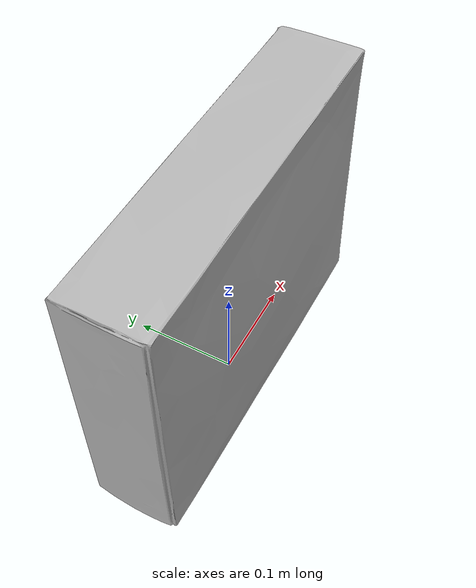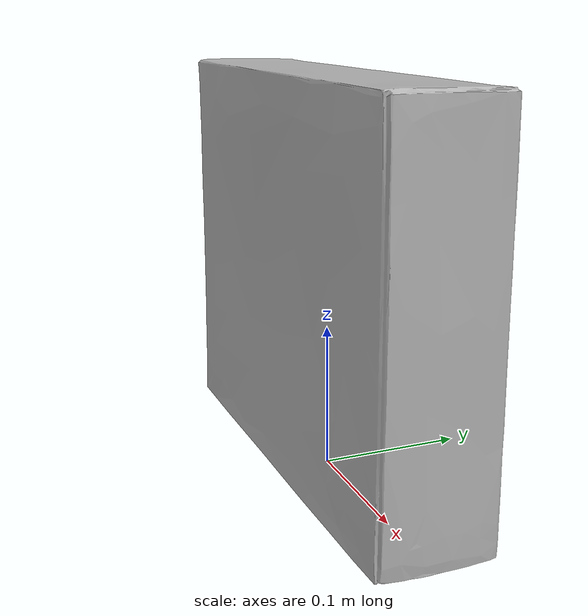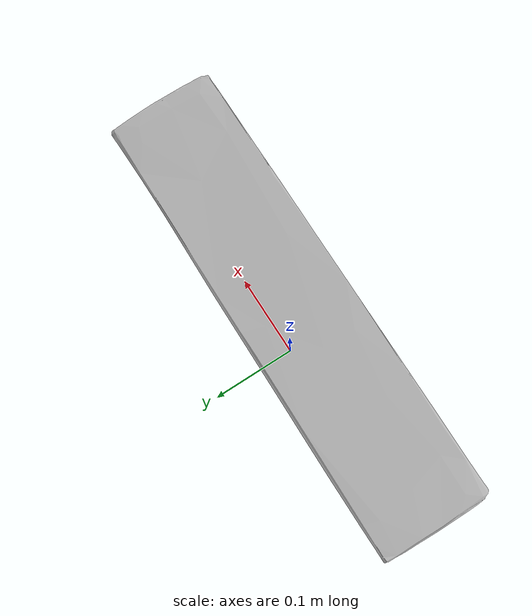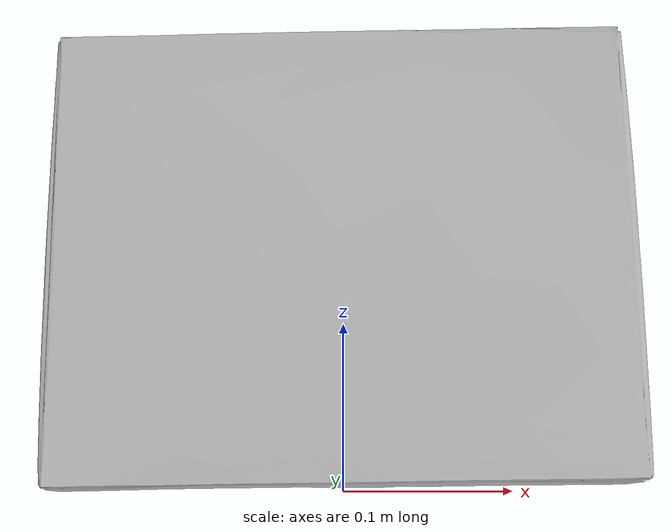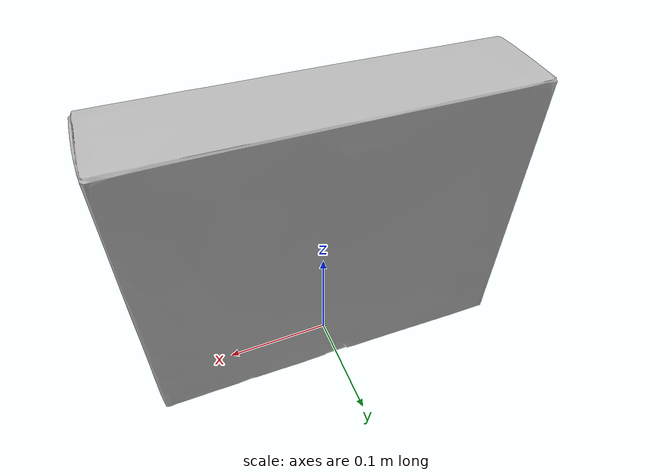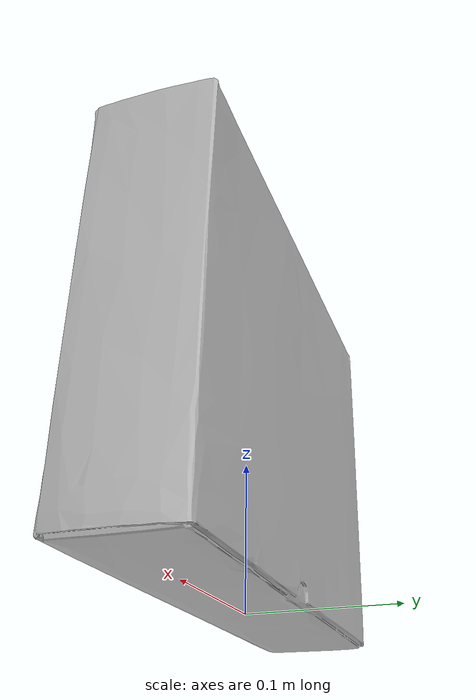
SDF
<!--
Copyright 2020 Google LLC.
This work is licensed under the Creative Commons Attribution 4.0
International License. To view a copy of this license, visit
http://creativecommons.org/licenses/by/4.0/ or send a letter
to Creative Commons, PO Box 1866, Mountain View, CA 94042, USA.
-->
<?xml version="1.0" ?>
<sdf version="1.6">
  <model name="Asus_Sabertooth_990FX_20_Motherboard_ATX_Socket_AM3">
    <link name="link_0">
      <visual name="visual">
        <geometry>
          <mesh>
            <uri>meshes/model.obj</uri>
          </mesh>
        </geometry>
      </visual>
      <collision name="collision_0">
        <geometry>
          <mesh>
            <uri>meshes/model.obj</uri>
          </mesh>
        </geometry>
      </collision>
    </link>
  </model>
</sdf>
